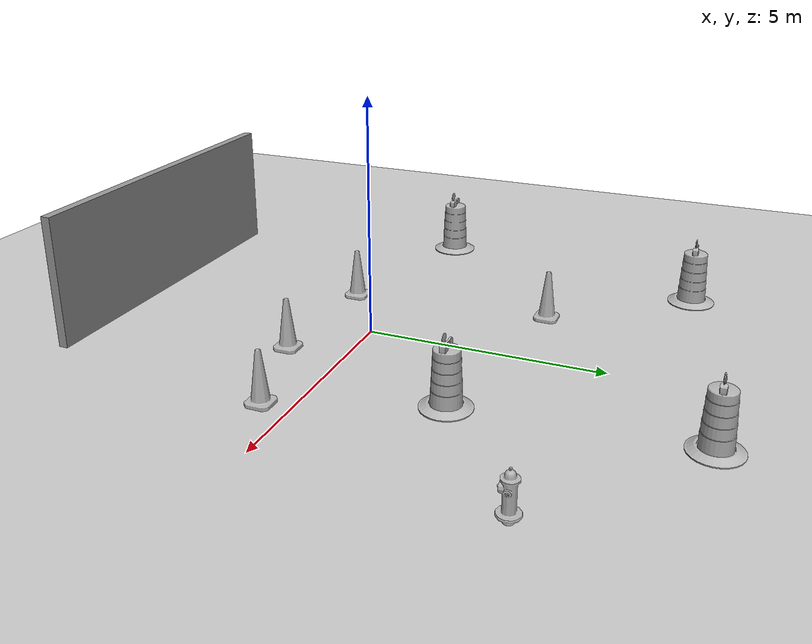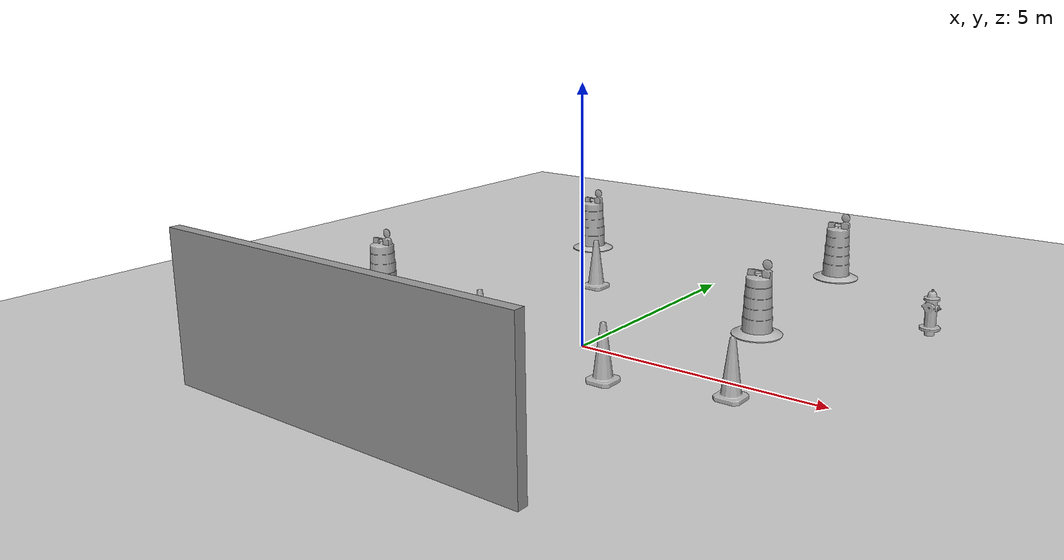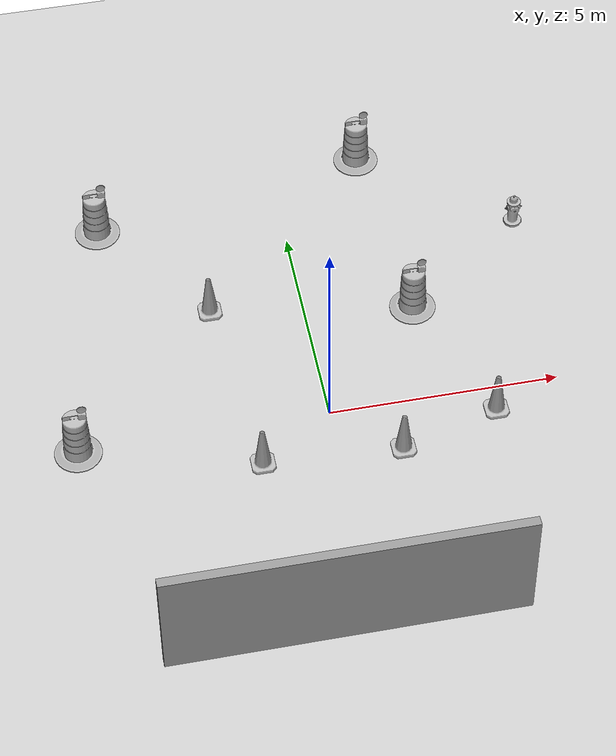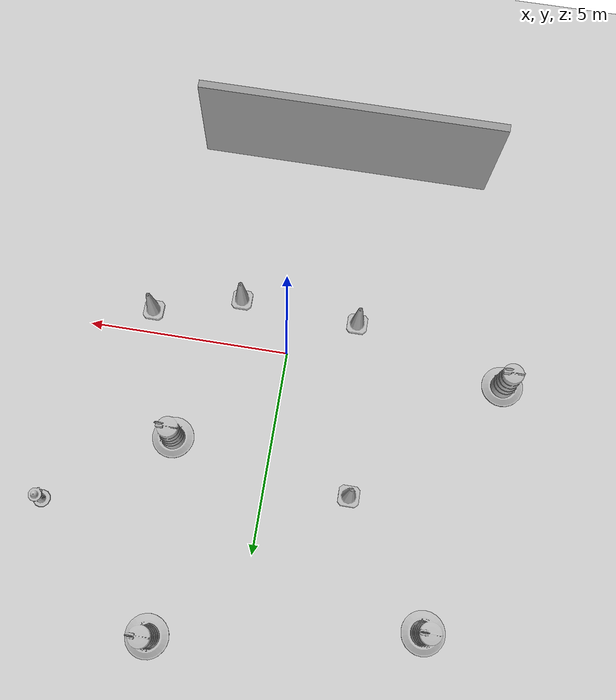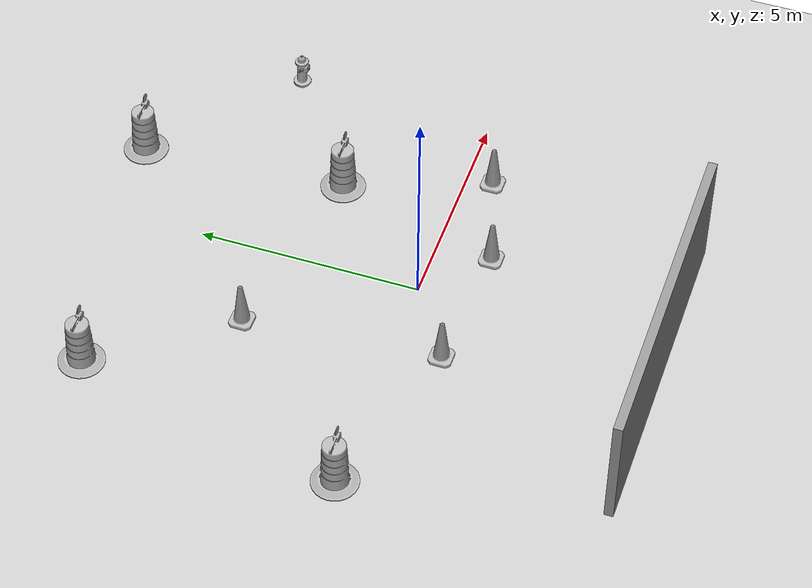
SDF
<sdf version="1.7">
 <world name="default">
  <light name="sun" type="directional">
   <pose>0 0 10 0 -0 0</pose>
   <diffuse>0.8 0.8 0.8 1</diffuse>
   <specular>0.2 0.2 0.2 1</specular>
   <attenuation>
    <range>1000</range>
    <constant>0.9</constant>
    <linear>0.01</linear>
    <quadratic>0.001</quadratic>
   </attenuation>
   <direction>-0.5 0.1 -0.9</direction>
   <spot><inner_angle>0</inner_angle><outer_angle>0</outer_angle><falloff>0</falloff></spot>
  </light>
  <model name="ground_plane">
   <static>1</static>
   <link name="link">
    <collision name="collision">
     <geometry><plane><normal>0 0 1</normal><size>100 100</size></plane></geometry>
     <surface>
      <contact><collide_bitmask>65535</collide_bitmask></contact>
      <friction><ode><mu>100</mu><mu2>50</mu2></ode></friction>
     </surface>
    </collision>
    <visual name="visual">
     <cast_shadows>0</cast_shadows>
     <geometry><plane><normal>0 0 1</normal><size>100 100</size></plane></geometry>
     <material>
      <script><uri>file://media/materials/scripts/gazebo.material</uri><name>Gazebo/Grey</name></script>
     </material>
    </visual>
   </link>
  </model>
  <gravity>0 0 -9.8</gravity>
  <magnetic_field>6e-06 2.3e-05 -4.2e-05</magnetic_field>
  <atmosphere type="adiabatic"/>
  <physics type="ode">
   <max_step_size>0.001</max_step_size>
   <real_time_factor>1</real_time_factor>
   <real_time_update_rate>1000</real_time_update_rate>
  </physics>
  <scene><ambient>0.4 0.4 0.4 1</ambient><background>0.7 0.7 0.7 1</background><shadows>1</shadows></scene>
  <audio><device>default</device></audio>
  <spherical_coordinates>
   <surface_model>EARTH_WGS84</surface_model>
   <latitude_deg>0</latitude_deg>
   <longitude_deg>0</longitude_deg>
   <elevation>0</elevation>
   <heading_deg>0</heading_deg>
  </spherical_coordinates>
  <model name="Construction Barrel">
   <link name="link">
    <inertial>
     <pose>0 0 0.4 0 -0 0</pose>
     <mass>500</mass>
     <inertia><ixx>51.2096</ixx><iyy>51.2096</iyy><izz>25</izz><ixy>0</ixy><ixz>0</ixz><iyz>0</iyz></inertia>
    </inertial>
    <collision name="collision">
     <geometry><mesh><uri>model://construction_barrel/meshes/construction_barrel.dae</uri></mesh></geometry>
    </collision>
    <visual name="visual">
     <geometry><mesh><uri>model://construction_barrel/meshes/construction_barrel.dae</uri></mesh></geometry>
    </visual>
   </link>
   <pose>2.37195 2.55426 -1e-06 4e-06 -1e-06 -2.6e-05</pose>
  </model>
  <model name="Construction Barrel_0">
   <link name="link">
    <inertial>
     <pose>0 0 0.4 0 -0 0</pose>
     <mass>500</mass>
     <inertia><ixx>51.2096</ixx><iyy>51.2096</iyy><izz>25</izz><ixy>0</ixy><ixz>0</ixz><iyz>0</iyz></inertia>
    </inertial>
    <collision name="collision">
     <geometry><mesh><uri>model://construction_barrel/meshes/construction_barrel.dae</uri></mesh></geometry>
    </collision>
    <visual name="visual">
     <geometry><mesh><uri>model://construction_barrel/meshes/construction_barrel.dae</uri></mesh></geometry>
    </visual>
   </link>
   <pose>2.03296 7.1804 -1e-06 2e-06 -1e-06 -2.3e-05</pose>
  </model>
  <model name="Construction Barrel_1">
   <link name="link">
    <inertial>
     <pose>0 0 0.4 0 -0 0</pose>
     <mass>500</mass>
     <inertia><ixx>51.2096</ixx><iyy>51.2096</iyy><izz>25</izz><ixy>0</ixy><ixz>0</ixz><iyz>0</iyz></inertia>
    </inertial>
    <collision name="collision">
     <geometry><mesh><uri>model://construction_barrel/meshes/construction_barrel.dae</uri></mesh></geometry>
    </collision>
    <visual name="visual">
     <geometry><mesh><uri>model://construction_barrel/meshes/construction_barrel.dae</uri></mesh></geometry>
    </visual>
   </link>
   <pose>-4.16218 6.08164 -0 0 0 -2.6e-05</pose>
  </model>
  <model name="Construction Barrel_2">
   <link name="link">
    <inertial>
     <pose>0 0 0.4 0 -0 0</pose>
     <mass>500</mass>
     <inertia><ixx>51.2096</ixx><iyy>51.2096</iyy><izz>25</izz><ixy>0</ixy><ixz>0</ixz><iyz>0</iyz></inertia>
    </inertial>
    <collision name="collision">
     <geometry><mesh><uri>model://construction_barrel/meshes/construction_barrel.dae</uri></mesh></geometry>
    </collision>
    <visual name="visual">
     <geometry><mesh><uri>model://construction_barrel/meshes/construction_barrel.dae</uri></mesh></geometry>
    </visual>
   </link>
   <pose>-5.40613 -0.03659 -1e-06 2e-06 -1e-06 -2.6e-05</pose>
  </model>
  <model name="Construction Cone">
   <link name="link">
    <collision name="collision">
     <geometry>
      <mesh><scale>10 10 10</scale><uri>model://construction_cone/meshes/construction_cone.dae</uri></mesh>
     </geometry>
    </collision>
    <visual name="visual">
     <geometry>
      <mesh><scale>10 10 10</scale><uri>model://construction_cone/meshes/construction_cone.dae</uri></mesh>
     </geometry>
    </visual>
    <inertial>
     <inertia><ixx>1</ixx><ixy>0</ixy><ixz>0</ixz><iyy>1</iyy><iyz>0</iyz><izz>1</izz></inertia>
     <mass>1</mass>
    </inertial>
   </link>
   <pose>-1.6343 -1.06979 -0 1e-06 -0 0</pose>
  </model>
  <model name="Construction Cone_0">
   <link name="link">
    <collision name="collision">
     <geometry>
      <mesh><scale>10 10 10</scale><uri>model://construction_cone/meshes/construction_cone.dae</uri></mesh>
     </geometry>
    </collision>
    <visual name="visual">
     <geometry>
      <mesh><scale>10 10 10</scale><uri>model://construction_cone/meshes/construction_cone.dae</uri></mesh>
     </geometry>
    </visual>
    <inertial>
     <inertia><ixx>1</ixx><ixy>0</ixy><ixz>0</ixz><iyy>1</iyy><iyz>0</iyz><izz>1</izz></inertia>
     <mass>1</mass>
    </inertial>
   </link>
   <pose>1.34854 -1.24127 -0 0 -0 0</pose>
  </model>
  <model name="Construction Cone_1">
   <link name="link">
    <collision name="collision">
     <geometry>
      <mesh><scale>10 10 10</scale><uri>model://construction_cone/meshes/construction_cone.dae</uri></mesh>
     </geometry>
    </collision>
    <visual name="visual">
     <geometry>
      <mesh><scale>10 10 10</scale><uri>model://construction_cone/meshes/construction_cone.dae</uri></mesh>
     </geometry>
    </visual>
    <inertial>
     <inertia><ixx>1</ixx><ixy>0</ixy><ixz>0</ixz><iyy>1</iyy><iyz>0</iyz><izz>1</izz></inertia>
     <mass>1</mass>
    </inertial>
   </link>
   <pose>3.51526 -0.600512 -4e-06 4e-06 -1e-06 0</pose>
  </model>
  <model name="Construction Cone_2">
   <link name="link">
    <collision name="collision">
     <geometry>
      <mesh><scale>10 10 10</scale><uri>model://construction_cone/meshes/construction_cone.dae</uri></mesh>
     </geometry>
    </collision>
    <visual name="visual">
     <geometry>
      <mesh><scale>10 10 10</scale><uri>model://construction_cone/meshes/construction_cone.dae</uri></mesh>
     </geometry>
    </visual>
    <inertial>
     <inertia><ixx>1</ixx><ixy>0</ixy><ixz>0</ixz><iyy>1</iyy><iyz>0</iyz><izz>1</izz></inertia>
     <mass>1</mass>
    </inertial>
   </link>
   <pose>-2.04513 3.2746 -0 0 -0 0</pose>
  </model>
  <model name="fire_hydrant">
   <static>1</static>
   <link name="link">
    <collision name="collision">
     <geometry><mesh><uri>model://fire_hydrant/meshes/fire_hydrant.dae</uri></mesh></geometry>
    </collision>
    <visual name="visual">
     <geometry><mesh><uri>model://fire_hydrant/meshes/fire_hydrant.dae</uri></mesh></geometry>
    </visual>
   </link>
   <pose>5.12446 4.53337 0 0 -0 0</pose>
  </model>
  <model name="grey_wall">
   <static>1</static>
   <link name="link">
    <pose>0 0 1.4 0 -0 0</pose>
    <collision name="collision"><geometry><box><size>7.5 0.2 2.8</size></box></geometry></collision>
    <visual name="visual">
     <cast_shadows>0</cast_shadows>
     <geometry><box><size>7.5 0.2 2.8</size></box></geometry>
     <material>
      <script>
       <uri>model://grey_wall/materials/scripts</uri>
       <uri>model://grey_wall/materials/textures</uri>
       <name>vrc/grey_wall</name>
      </script>
     </material>
    </visual>
   </link>
   <pose>-0.684279 -5.50374 0 0 -0 0</pose>
  </model>
 </world>
</sdf>
